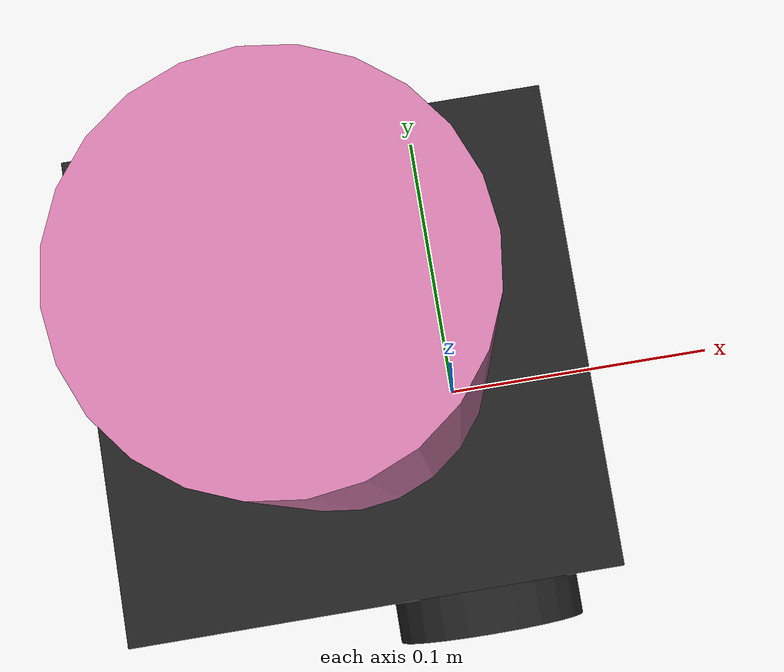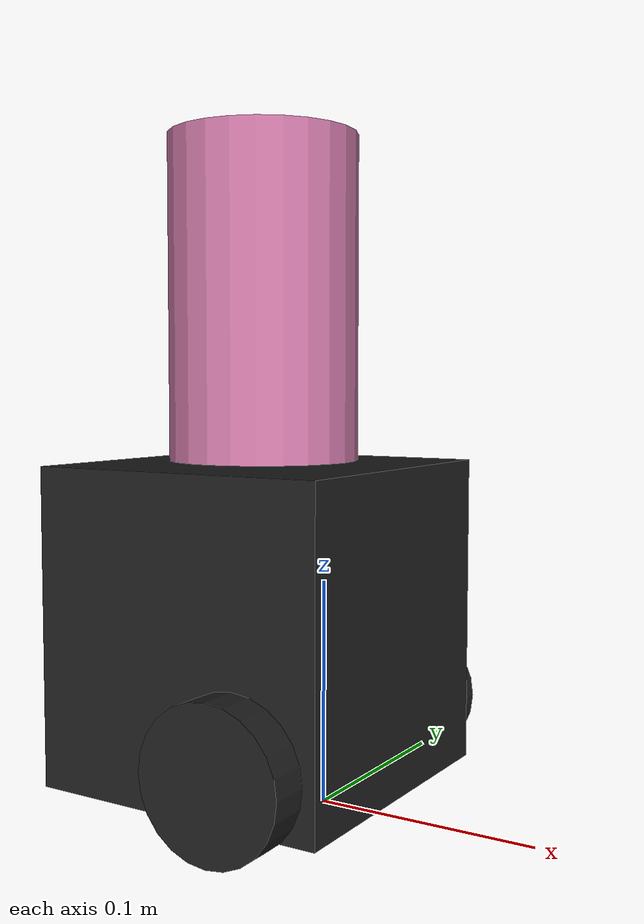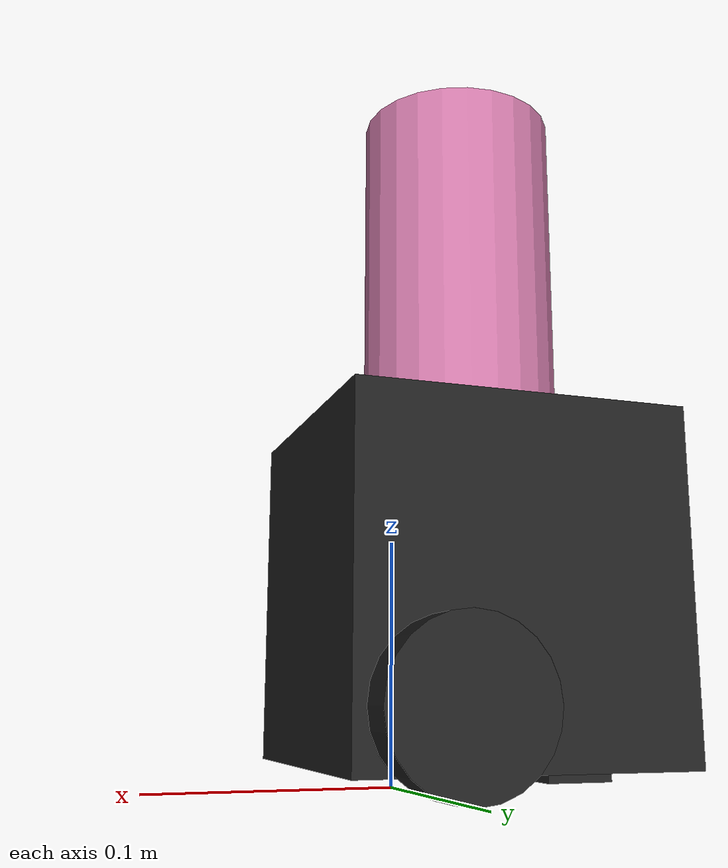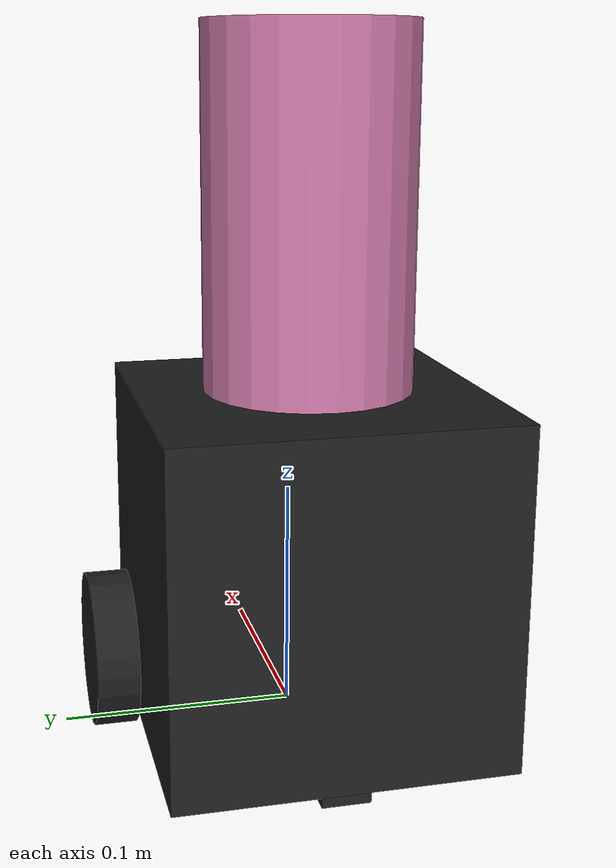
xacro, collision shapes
<?xml version="1.0" ?>
<robot name="mybot_burger"
    xmlns:xacro="http://ros.org/wiki/xacro">
    <xacro:include filename="$(find mybot_description)/urdf/common_properties.xacro"/>
    <xacro:include filename="$(find mybot_description)/urdf/mybot_burger.gazebo.xacro"/>

    <link name="base_footprint"/>

    <joint name="base_joint" type="fixed">
        <parent link="base_footprint"/>
        <child link="base_link"/>
        <origin xyz="0.0 0.0 0.010" rpy="0 0 0"/>
    </joint>

    <link name="base_link">
        <visual>
            <origin xyz="-0.032 0 0.0" rpy="0 0 0"/>
            <geometry>
                <mesh filename="package://mybot_description/meshes/bases/burger_base.stl" scale="0.001 0.001 0.001"/>
            </geometry>
            <material name="light_black"/>
        </visual>

        <collision>
            <origin xyz="-0.032 0 0.070" rpy="0 0 0"/>
            <geometry>
                <box size="0.140 0.140 0.143"/>
            </geometry>
        </collision>

        <inertial>
            <origin xyz="0 0 0" rpy="0 0 0"/>
            <mass value="8.2573504e-01"/>
            <inertia ixx="2.2124416e-03" ixy="-1.2294101e-05" ixz="3.4938785e-05" iyy="2.1193702e-03" iyz="-5.0120904e-06" izz="2.0064271e-03" />
        </inertial>
    </link>

    <joint name="wheel_left_joint" type="continuous">
        <parent link="base_link"/>
        <child link="wheel_left_link"/>
        <origin xyz="0.0 0.08 0.023" rpy="-1.57 0 0"/>
        <axis xyz="0 0 1"/>
    </joint>

    <link name="wheel_left_link">
        <visual>
            <origin xyz="0 0 0" rpy="1.57 0 0"/>
            <geometry>
                <mesh filename="package://mybot_description/meshes/wheels/left_tire.stl" scale="0.001 0.001 0.001"/>
            </geometry>
            <material name="dark"/>
        </visual>

        <collision>
            <origin xyz="0 0 0" rpy="0 0 0"/>
            <geometry>
                <cylinder length="0.018" radius="0.033"/>
            </geometry>
        </collision>

        <inertial>
            <origin xyz="0 0 0" />
            <mass value="2.8498940e-02" />
            <inertia ixx="1.1175580e-05" ixy="-4.2369783e-11" ixz="-5.9381719e-09" iyy="1.1192413e-05" iyz="-1.4400107e-11" izz="2.0712558e-05" />
        </inertial>
    </link>

    <joint name="wheel_right_joint" type="continuous">
        <parent link="base_link"/>
        <child link="wheel_right_link"/>
        <origin xyz="0.0 -0.080 0.023" rpy="-1.57 0 0"/>
        <axis xyz="0 0 1"/>
    </joint>

    <link name="wheel_right_link">
        <visual>
            <origin xyz="0 0 0" rpy="1.57 0 0"/>
            <geometry>
                <mesh filename="package://mybot_description/meshes/wheels/right_tire.stl" scale="0.001 0.001 0.001"/>
            </geometry>
            <material name="dark"/>
        </visual>

        <collision>
            <origin xyz="0 0 0" rpy="0 0 0"/>
            <geometry>
                <cylinder length="0.018" radius="0.033"/>
            </geometry>
        </collision>

        <inertial>
            <origin xyz="0 0 0" />
            <mass value="2.8498940e-02" />
            <inertia ixx="1.1175580e-05" ixy="-4.2369783e-11" ixz="-5.9381719e-09" iyy="1.1192413e-05" iyz="-1.4400107e-11" izz="2.0712558e-05" />
        </inertial>
    </link>

    <joint name="caster_back_joint" type="fixed">
        <parent link="base_link"/>
        <child link="caster_back_link"/>
        <origin xyz="-0.081 0 -0.004" rpy="-1.57 0 0"/>
    </joint>

    <link name="caster_back_link">
        <collision>
            <origin xyz="0 0.001 0" rpy="0 0 0"/>
            <geometry>
                <box size="0.030 0.009 0.020"/>
            </geometry>
        </collision>

        <inertial>
            <origin xyz="0 0 0" />
            <mass value="0.005" />
            <inertia ixx="0.001" ixy="0.0" ixz="0.0" iyy="0.001" iyz="0.0" izz="0.001" />
        </inertial>
    </link>

    <joint name="imu_joint" type="fixed">
        <parent link="base_link"/>
        <child link="imu_link"/>
        <origin xyz="-0.032 0 0.068" rpy="0 0 0"/>
    </joint>

    <link name="imu_link"/>

    <xacro:include filename="$(find velodyne_description)/urdf/HDL-32E.urdf.xacro"/>
    <xacro:HDL-32E parent="base_link" name="velodyne" topic="/velodyne_points" hz="10" samples="220" gpu="${gpu}">
        <origin xyz="-0.032 0 0.143" rpy="0 0 0" />
    </xacro:HDL-32E>

</robot>

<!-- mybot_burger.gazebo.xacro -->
<robot name="mybot_sim"
    xmlns:xacro="http://ros.org/wiki/xacro">
    <xacro:arg name="gpu" default="true"/>
    <xacro:arg name="laser_visual" default="false"/>
    <xacro:arg name="imu_visual" default="false"/>

    <xacro:property name="gpu" value="$(arg gpu)" />

    <!-- Provide material and color for base_link -->
    <gazebo reference="base_link">
        <material>Gazebo/DarkGrey</material>
    </gazebo>

    <gazebo reference="wheel_left_link">
        <mu1>0.1</mu1>
        <mu2>0.1</mu2>
        <kp>500000.0</kp>
        <kd>10.0</kd>
        <minDepth>0.001</minDepth>
        <maxVel>0.1</maxVel>
        <fdir1>1 0 0</fdir1>
        <material>Gazebo/FlatBlack</material>
    </gazebo>

    <gazebo reference="wheel_right_link">
        <mu1>0.1</mu1>
        <mu2>0.1</mu2>
        <kp>500000.0</kp>
        <kd>10.0</kd>
        <minDepth>0.001</minDepth>
        <maxVel>0.1</maxVel>
        <fdir1>1 0 0</fdir1>
        <material>Gazebo/FlatBlack</material>
    </gazebo>

    <gazebo reference="caster_back_link">
        <mu1>0.1</mu1>
        <mu2>0.1</mu2>
        <kp>1000000.0</kp>
        <kd>100.0</kd>
        <minDepth>0.001</minDepth>
        <maxVel>1.0</maxVel>
        <material>Gazebo/FlatBlack</material>
    </gazebo>

    <gazebo reference="imu_link">
        <sensor type="imu" name="imu">
            <always_on>true</always_on>
            <visualize>$(arg imu_visual)</visualize>
        </sensor>
        <material>Gazebo/FlatBlack</material>
    </gazebo>

    <!-- Parse drive labels and assign appropriate hardware interfaces and control managers -->
    <gazebo>
        <plugin name="mybot_burger_controller" filename="libgazebo_ros_diff_drive.so">
            <commandTopic>cmd_vel</commandTopic>
            <odometryTopic>odom</odometryTopic>
            <odometryFrame>odom</odometryFrame>
            <odometrySource>world</odometrySource>
            <publishOdomTF>true</publishOdomTF>
            <robotBaseFrame>base_footprint</robotBaseFrame>
            <publishWheelTF>false</publishWheelTF>
            <publishTf>true</publishTf>
            <publishWheelJointState>true</publishWheelJointState>
            <legacyMode>false</legacyMode>
            <updateRate>30</updateRate>
            <leftJoint>wheel_left_joint</leftJoint>
            <rightJoint>wheel_right_joint</rightJoint>
            <wheelSeparation>0.160</wheelSeparation>
            <wheelDiameter>0.066</wheelDiameter>
            <wheelAcceleration>1</wheelAcceleration>
            <wheelTorque>10</wheelTorque>
            <rosDebugLevel>na</rosDebugLevel>
        </plugin>
    </gazebo>

    <gazebo>
        <plugin name="imu_plugin" filename="libgazebo_ros_imu.so">
            <alwaysOn>true</alwaysOn>
            <bodyName>imu_link</bodyName>
            <frameName>imu_link</frameName>
            <topicName>imu</topicName>
            <serviceName>imu_service</serviceName>
            <gaussianNoise>0.0</gaussianNoise>
            <updateRate>200</updateRate>
            <imu>
                <noise>
                    <type>gaussian</type>
                    <rate>
                        <mean>0.0</mean>
                        <stddev>2e-4</stddev>
                        <bias_mean>0.0000075</bias_mean>
                        <bias_stddev>0.0000008</bias_stddev>
                    </rate>
                    <accel>
                        <mean>0.0</mean>
                        <stddev>1.7e-2</stddev>
                        <bias_mean>0.1</bias_mean>
                        <bias_stddev>0.001</bias_stddev>
                    </accel>
                </noise>
            </imu>
        </plugin>
    </gazebo>

    <gazebo reference="base_scan">
        <material>Gazebo/FlatBlack</material>
        <sensor type="ray" name="lds_lfcd_sensor">
            <pose>0 0 0 0 0 0</pose>
            <visualize>$(arg laser_visual)</visualize>
            <update_rate>5</update_rate>
            <ray>
                <scan>
                    <horizontal>
                        <samples>360</samples>
                        <resolution>1</resolution>
                        <min_angle>0.0</min_angle>
                        <max_angle>6.28319</max_angle>
                    </horizontal>
                </scan>
                <range>
                    <min>0.120</min>
                    <max>3.5</max>
                    <resolution>0.015</resolution>
                </range>
                <noise>
                    <type>gaussian</type>
                    <mean>0.0</mean>
                    <stddev>0.01</stddev>
                </noise>
            </ray>
            <plugin name="gazebo_ros_lds_lfcd_controller" filename="libgazebo_ros_laser.so">
                <topicName>scan</topicName>
                <frameName>base_scan</frameName>
            </plugin>
        </sensor>
    </gazebo>

</robot>

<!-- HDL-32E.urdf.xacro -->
<robot xmlns:xacro="http://www.ros.org/wiki/xacro" name="HDL-32E">
  <xacro:property name="M_PI" value="3.1415926535897931" />
  <xacro:macro name="HDL-32E" params="*origin parent:=base_link name:=velodyne tf_prefix:='' topic:=/velodyne_points organize_cloud:=false hz:=10 lasers:=32 samples:=2187 collision_range:=0.3 min_range:=0.9 max_range:=130.0 noise:=0.008 min_angle:=-${M_PI} max_angle:=${M_PI} gpu:=false">

    <joint name="${name}_base_mount_joint" type="fixed">
      <xacro:insert_block name="origin" />
      <parent link="${parent}"/>
      <child link="${name}_base_link"/>
    </joint>

    <link name="${name}_base_link">
      <inertial>
        <mass value="1.0"/>
        <origin xyz="0 0 0.07212"/>
        <inertia ixx="${(1.0 * (3.0*0.04267*0.04267 + 0.14424*0.14424)) / 12.0}" ixy="0" ixz="0"
          iyy="${(1.0 * (3.0*0.04267*0.04267 + 0.14424*0.14424)) / 12.0}" iyz="0"
          izz="${0.5 * 1.0 * (0.04267*0.04267)}"/>
      </inertial>
      <visual>
        <geometry>
          <mesh filename="package://velodyne_description/meshes/HDL32E_base.dae" />
        </geometry>
      </visual>
      <collision>
        <origin rpy="0 0 0" xyz="0 0 0.07212"/>
        <geometry>
          <cylinder radius="0.04267" length="0.14424"/>
        </geometry>
      </collision>
    </link>

    <joint name="${name}_base_scan_joint" type="fixed" >
      <origin xyz="0 0 0.09081" rpy="0 0 0" />
      <parent link="${name}_base_link" />
      <child link="${name}"/>
    </joint>

    <link name="${name}">
      <inertial>
        <mass value="0.01"/>
        <origin xyz="0 0 0"/>
        <inertia ixx="1e-7" ixy="0" ixz="0" iyy="1e-7" iyz="0" izz="1e-7"/>
      </inertial>
      <visual>
        <origin xyz="0 0 -0.09081" rpy="0 0 0" />
        <geometry>
          <mesh filename="package://velodyne_description/meshes/HDL32E_scan.dae" />
        </geometry>
      </visual>
      <collision>
        <geometry>
          <sphere radius="0"/>
        </geometry>
      </collision>
    </link>

    <!-- Gazebo requires the velodyne_gazebo_plugins package -->
    <gazebo reference="${name}">
      <xacro:if value="${gpu}">
        <sensor type="gpu_ray" name="${name}-HDL32E">
          <pose>0 0 0 0 0 0</pose>
          <visualize>false</visualize>
          <update_rate>${hz}</update_rate>
          <ray>
            <scan>
              <horizontal>
                <samples>${samples}</samples>
                <resolution>1</resolution>
                <min_angle>${min_angle}</min_angle>
                <max_angle>${max_angle}</max_angle>
              </horizontal>
              <vertical>
                <samples>${lasers}</samples>
                <resolution>1</resolution>
                <min_angle>-${5.0*M_PI/180.0}</min_angle>
                <max_angle> ${85.0*M_PI/180.0}</max_angle>
              </vertical>
            </scan>
            <range>
              <min>${collision_range}</min>
              <max>${max_range+1}</max>
              <resolution>0.001</resolution>
            </range>
            <noise>
              <type>gaussian</type>
              <mean>0.0</mean>
              <stddev>0.0</stddev>
            </noise>
          </ray>
          <plugin name="gazebo_ros_laser_controller" filename="libgazebo_ros_velodyne_laser.so">
            <ros>
              <namespace>/${name}</namespace>
              <remapping>~/out:=${topic}</remapping>
            </ros>
            <tf_prefix>${tf_prefix}</tf_prefix>
            <frame_name>${name}</frame_name>
            <organize_cloud>${organize_cloud}</organize_cloud>
            <min_range>${min_range}</min_range>
            <max_range>${max_range}</max_range>
            <gaussian_noise>${noise}</gaussian_noise>
          </plugin>
        </sensor>
      </xacro:if>
      <xacro:unless value="${gpu}">
        <sensor type="ray" name="${name}-HDL32E">
          <pose>0 0 0 0 0 0</pose>
          <visualize>false</visualize>
          <update_rate>${hz}</update_rate>
          <ray>
            <scan>
              <horizontal>
                <samples>${samples}</samples>
                <resolution>1</resolution>
                <min_angle>${min_angle}</min_angle>
                <max_angle>${max_angle}</max_angle>
              </horizontal>
              <vertical>
                <samples>${lasers}</samples>
                <resolution>1</resolution>
                <min_angle>-${5.0*M_PI/180.0}</min_angle>
                <max_angle> ${85.0*M_PI/180.0}</max_angle>
              </vertical>
            </scan>
            <range>
              <min>${collision_range}</min>
              <max>${max_range+1}</max>
              <resolution>0.001</resolution>
            </range>
            <noise>
              <type>gaussian</type>
              <mean>0.0</mean>
              <stddev>0.0</stddev>
            </noise>
          </ray>
          <plugin name="gazebo_ros_laser_controller" filename="libgazebo_ros_velodyne_laser.so">
            <ros>
              <namespace>/${name}</namespace>
              <remapping>~/out:=${topic}</remapping>
            </ros>
            <tf_prefix>${tf_prefix}</tf_prefix>
            <frame_name>${name}</frame_name>
            <organize_cloud>${organize_cloud}</organize_cloud>
            <min_range>${min_range}</min_range>
            <max_range>${max_range}</max_range>
            <gaussian_noise>${noise}</gaussian_noise>
          </plugin>
        </sensor>
      </xacro:unless>
    </gazebo>

  </xacro:macro>
</robot>
